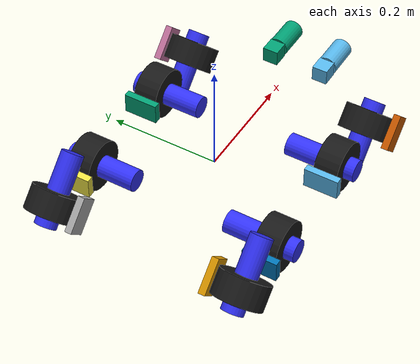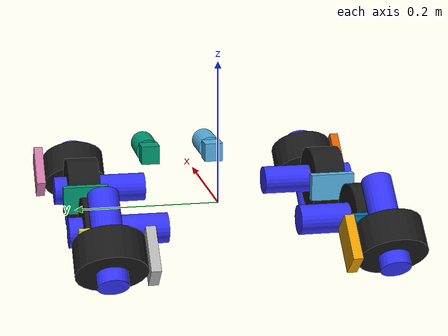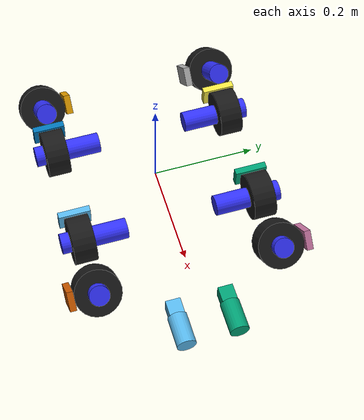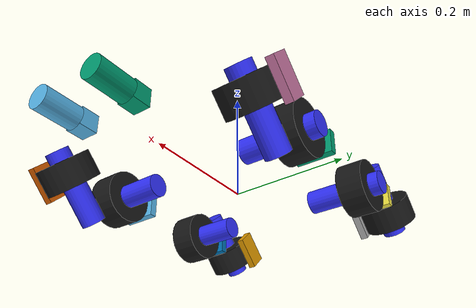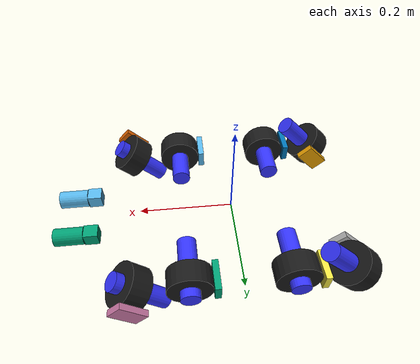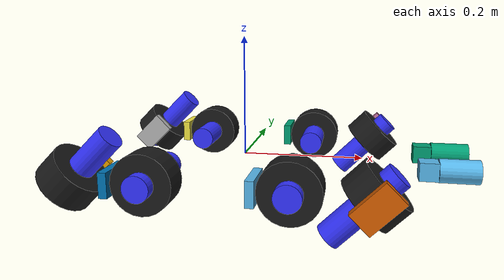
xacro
<?xml version="1.0"?>
<robot name="ucf_robosub" xmlns:xacro="http://www.ros.org/wiki/xacro">
    <xacro:include filename="$(find sub_definition)/urdf/sub_body.urdf.xacro"/>
    <xacro:include filename="$(find sub_definition)/urdf/sub_thruster.urdf.xacro"/>
    <xacro:include filename="$(find sub_definition)/urdf/sub_arm.urdf.xacro"/>
    <xacro:include filename="$(find sub_definition)/urdf/vision_cam.urdf.xacro"/>
    <link name="base_link">
    </link>

    <sub_thruster identifier="vertical1" parent="base_link" xPos="0.105" yPos="-0.18" zPos="0.0" roll="1.571" pitch="0.0" yaw="1.571"/>
    <sub_thruster identifier="vertical2" parent="base_link" xPos="0.105" yPos="0.18" zPos="0.0" roll="1.571" pitch="3.141" yaw="1.571"/>
    <sub_thruster identifier="vertical3" parent="base_link" xPos="-0.105" yPos="0.18" zPos="0.0" roll="1.571" pitch="3.141" yaw="1.571"/>
    <sub_thruster identifier="vertical4" parent="base_link" xPos="-0.105" yPos="-0.18" zPos="0.0" roll="1.571" pitch="0.0" yaw="1.571"/>
    <sub_thruster identifier="horizontal1" parent="base_link" xPos="0.22" yPos="-0.18" zPos="0.0" roll="1.571" pitch="0.7855" yaw="3.141"/>
    <sub_thruster identifier="horizontal2" parent="base_link" xPos="0.22" yPos="0.18" zPos="0.0" roll="-1.571" pitch="0.7855" yaw="3.141"/>
    <sub_thruster identifier="horizontal3" parent="base_link" xPos="-0.22" yPos="0.18" zPos="0.0" roll="-1.571" pitch="-0.7855" yaw="0.0"/>
    <sub_thruster identifier="horizontal4" parent="base_link" xPos="-0.22" yPos="-0.18" zPos="0.0" roll="1.571" pitch="-0.7855" yaw="0.0"/>
    <sub_vision_cam identifier="left" parent="base_link" xPos="0.301" yPos="-0.051" zPos="0.0" roll="0.0" pitch="0.0" yaw="0.0"/>
    <sub_vision_cam identifier="right" parent="base_link" xPos="0.301" yPos="0.051" zPos="0.0" roll="0.0" pitch="0.0" yaw="0.0"/>

    <link name="ahrs8_imu">
    </link>
    <joint name="imu_joint" type="fixed">
        <parent link="base_link"/>
	<child link="ahrs8_imu"/>
	<origin xyz="0.0 0.066 0.0" rpy="3.141 0.0 3.141"/>
    </joint>

    <link name="depth">
    </link>
    <joint name="depth_joint" type="fixed">
        <parent link="base_link"/>
        <child link="depth"/>
        <origin xyz="-0.3 -0.2 0.0" rpy="0.0 0.0 0.0"/>
    </joint>
</robot>

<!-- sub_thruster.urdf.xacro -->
<robot xmlns:xacro="http://www.ros.org/wiki/xacro">
    <xacro:macro name="sub_thruster" params="identifier parent xPos yPos zPos roll pitch yaw">
        <link name="${identifier}_thruster">
            <visual>
                <geometry>
                    <cylinder length="0.131" radius="0.02"/>
                </geometry>
                <origin rpy="0 -1.571 0" xyz="0.0253 0 0"/>
                <material name="blue">
                    <color rgba="0.2 0.2 1 1"/>
                </material>
            </visual>
            <visual>
                <geometry>
                    <cylinder length="0.0445" radius="0.0458"/>
                </geometry>
                <origin rpy="0 -1.571 0" xyz="0 0 0"/>
                <material name="black">
                    <color rgba="0.1 0.1 0.1 1"/>
                </material>
            </visual>
            <visual>
                <geometry>
                    <box size="0.0634 0.0128 0.0381"/>
                </geometry>
                <origin xyz="0 0 -0.0522" rpy="1.571 0 0"/>
            </visual>
            <collision>
                <geometry>
                    <cylinder length="0.131" radius="0.02"/>
                </geometry>
                <origin rpy="0 -1.571 0" xyz="0.0253 0 0"/>
            </collision>
            <collision>
                <geometry>
                    <cylinder length="0.0445" radius="0.0458"/>
                </geometry>
                <origin rpy="0 -1.571 0" xyz="0 0 0"/>
            </collision>
            <collision>
                <geometry>
                    <box size="0.0634 0.0128 0.0381"/>
                </geometry>
                <origin xyz="0 0 -0.0522" rpy="1.571 0 0"/>
            </collision>
        </link>
        <joint name="${identifier}_thruster_joint" type="fixed">
			<parent link="${parent}"/>
			<child link="${identifier}_thruster"/>
			<origin xyz="${xPos} ${yPos} ${zPos}" rpy="${roll} ${pitch} ${yaw}"/>
		</joint>
    </xacro:macro>
</robot>

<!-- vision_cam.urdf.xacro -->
<robot xmlns:xacro="http://www.ros.org/wiki/xacro">
    <xacro:macro name="sub_vision_cam" params="identifier parent xPos yPos zPos roll pitch yaw">
        <link name="${identifier}_vision_cam">
            <visual>
                <geometry>
                    <box size="0.030 0.029 0.029"/>
                </geometry>
                <origin rpy="0 0 0" xyz="0 0 0"/>
            </visual>
            <visual>
                <geometry>
                    <cylinder radius="0.0187" length="0.061"/>
                </geometry>
                <origin rpy="0 1.571 0" xyz="0.045 0 0"/>
            </visual>
        </link>
	<sensor name="${identifier}_cam_sensor" update_rate="30">
		<parent link="${identifier}_cam_sensor"/>
		<origin xyz="0 0 0" rpy="0 0 0"/>
		<camera>
			<image width="1288" height="964" hfov="1.571" near="0.01" far="50.0"/>
		</camera>
	</sensor>
        <joint name="${identifier}_cam_joint" type="fixed">
			<parent link="${parent}"/>
			<child link="${identifier}_vision_cam"/>
			<origin xyz="${xPos} ${yPos} ${zPos}" rpy="${roll} ${pitch} ${yaw}"/>
		</joint>
    </xacro:macro>
</robot>
